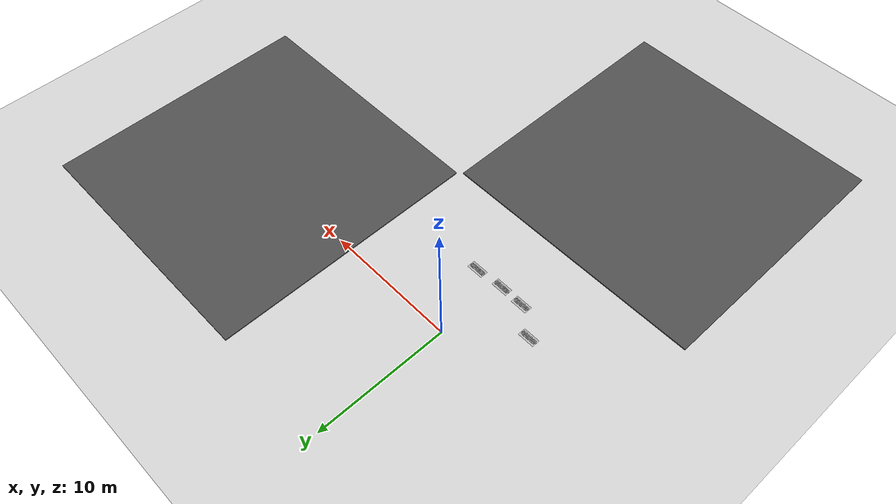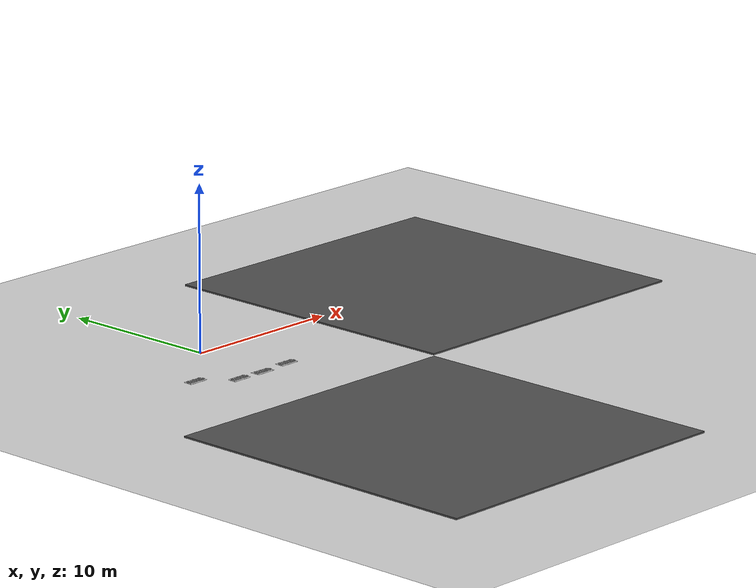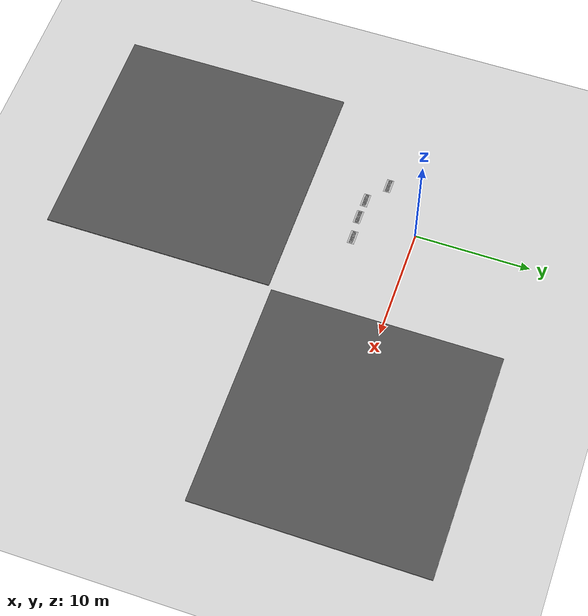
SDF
<sdf version="1.6">
 <world name="default">
  <model name="ground_plane">
   <static>1</static>
   <link name="link">
    <collision name="collision">
     <geometry><plane><normal>0 0 1</normal><size>100 100</size></plane></geometry>
     <surface><friction><ode><mu>100</mu><mu2>50</mu2></ode></friction></surface>
    </collision>
    <visual name="visual">
     <cast_shadows>0</cast_shadows>
     <geometry><plane><normal>0 0 1</normal><size>100 100</size></plane></geometry>
     <material>
      <script><uri>file://media/materials/scripts/gazebo.material</uri><name>Gazebo/Grey</name></script>
     </material>
    </visual>
   </link>
  </model>
  <model name="asphalt_plane">
   <static>1</static>
   <link name="link">
    <collision name="collision"><geometry><box><size>20 20 0.1</size></box></geometry></collision>
    <visual name="visual">
     <cast_shadows>0</cast_shadows>
     <geometry><box><size>20 20 0.1</size></box></geometry>
     <material>
      <script>
       <uri>model://asphalt_plane/materials/scripts</uri>
       <uri>model://asphalt_plane/materials/textures</uri>
       <name>vrc/asphalt</name>
      </script>
     </material>
    </visual>
   </link>
   <pose>18.9407 0.223118 0 0 -0 0</pose>
  </model>
  <model name="asphalt_plane_clone_1">
   <static>1</static>
   <link name="link">
    <collision name="collision"><geometry><box><size>20 20 0.1</size></box></geometry></collision>
    <visual name="visual">
     <cast_shadows>0</cast_shadows>
     <geometry><box><size>20 20 0.1</size></box></geometry>
     <material>
      <script>
       <uri>model://asphalt_plane/materials/scripts</uri>
       <uri>model://asphalt_plane/materials/textures</uri>
       <name>vrc/asphalt</name>
      </script>
     </material>
    </visual>
   </link>
   <pose>-1.39021 -20.104 0 0 -0 0</pose>
  </model>
  <model name="frc2016_roughterrain">
   <static>1</static>
   <link name="link">
    <visual name="platform">
     <pose>0 0 0.08269 0 -0 0</pose>
     <geometry><box><size>1.27 0.5969 0.003175</size></box></geometry>
    </visual>
    <collision name="platform">
     <pose>0 0 0.08269 0 -0 0</pose>
     <geometry><box><size>1.27 0.5969 0.003175</size></box></geometry>
    </collision>
    <visual name="row1_block1_sm">
     <pose>0.51435 0.1143 0.09698 0 -0 0</pose>
     <geometry><box><size>0.0762 0.0762 0.0254</size></box></geometry>
    </visual>
    <collision name="row1_block1_sm">
     <pose>0.51435 0.1143 0.09698 0 -0 0</pose>
     <geometry><box><size>0.0762 0.0762 0.0254</size></box></geometry>
    </collision>
    <visual name="row1_block2_lg">
     <pose>0.40005 0.1143 0.12238 0 -0 0</pose>
     <geometry><box><size>0.0762 0.0762 0.0762</size></box></geometry>
    </visual>
    <collision name="row1_block2_lg">
     <pose>0.40005 0.1143 0.12238 0 -0 0</pose>
     <geometry><box><size>0.0762 0.0762 0.0762</size></box></geometry>
    </collision>
    <visual name="row1_block3_md">
     <pose>0.28575 0.1143 0.10968 0 -0 0</pose>
     <geometry><box><size>0.0762 0.0762 0.0508</size></box></geometry>
    </visual>
    <collision name="row1_block3_md">
     <pose>0.28575 0.1143 0.10968 0 -0 0</pose>
     <geometry><box><size>0.0762 0.0762 0.0508</size></box></geometry>
    </collision>
    <visual name="row1_block4_sm">
     <pose>0.17145 0.1143 0.09698 0 -0 0</pose>
     <geometry><box><size>0.0762 0.0762 0.0254</size></box></geometry>
    </visual>
    <collision name="row1_block4_sm">
     <pose>0.17145 0.1143 0.09698 0 -0 0</pose>
     <geometry><box><size>0.0762 0.0762 0.0254</size></box></geometry>
    </collision>
    <visual name="row1_block5_md">
     <pose>0.05715 0.1143 0.10968 0 -0 0</pose>
     <geometry><box><size>0.0762 0.0762 0.0508</size></box></geometry>
    </visual>
    <collision name="row1_block5_md">
     <pose>0.05715 0.1143 0.10968 0 -0 0</pose>
     <geometry><box><size>0.0762 0.0762 0.0508</size></box></geometry>
    </collision>
    <visual name="row1_block6_lg">
     <pose>-0.05715 0.1143 0.12238 0 -0 0</pose>
     <geometry><box><size>0.0762 0.0762 0.0762</size></box></geometry>
    </visual>
    <collision name="row1_block6_lg">
     <pose>-0.05715 0.1143 0.12238 0 -0 0</pose>
     <geometry><box><size>0.0762 0.0762 0.0762</size></box></geometry>
    </collision>
    <visual name="row1_block7_sm">
     <pose>-0.17145 0.1143 0.09698 0 -0 0</pose>
     <geometry><box><size>0.0762 0.0762 0.0254</size></box></geometry>
    </visual>
    <collision name="row1_block7_sm">
     <pose>-0.17145 0.1143 0.09698 0 -0 0</pose>
     <geometry><box><size>0.0762 0.0762 0.0254</size></box></geometry>
    </collision>
    <visual name="row1_block8_sm">
     <pose>-0.28575 0.1143 0.09698 0 -0 0</pose>
     <geometry><box><size>0.0762 0.0762 0.0254</size></box></geometry>
    </visual>
    <collision name="row1_block8_sm">
     <pose>-0.28575 0.1143 0.09698 0 -0 0</pose>
     <geometry><box><size>0.0762 0.0762 0.0254</size></box></geometry>
    </collision>
    <visual name="row1_block9_md">
     <pose>-0.40005 0.1143 0.10968 0 -0 0</pose>
     <geometry><box><size>0.0762 0.0762 0.0508</size></box></geometry>
    </visual>
    <collision name="row1_block9_md">
     <pose>-0.40005 0.1143 0.10968 0 -0 0</pose>
     <geometry><box><size>0.0762 0.0762 0.0508</size></box></geometry>
    </collision>
    <visual name="row1_block10_lg">
     <pose>-0.51435 0.1143 0.12238 0 -0 0</pose>
     <geometry><box><size>0.0762 0.0762 0.0762</size></box></geometry>
    </visual>
    <collision name="row1_block10_lg">
     <pose>-0.51435 0.1143 0.12238 0 -0 0</pose>
     <geometry><box><size>0.0762 0.0762 0.0762</size></box></geometry>
    </collision>
    <visual name="row2_block1_md">
     <pose>0.5715 0 0.10968 0 -0 0</pose>
     <geometry><box><size>0.0762 0.0762 0.0508</size></box></geometry>
    </visual>
    <collision name="row2_block1_md">
     <pose>0.5715 0 0.10968 0 -0 0</pose>
     <geometry><box><size>0.0762 0.0762 0.0508</size></box></geometry>
    </collision>
    <visual name="row2_block2_sm">
     <pose>0.4572 0 0.09698 0 -0 0</pose>
     <geometry><box><size>0.0762 0.0762 0.0254</size></box></geometry>
    </visual>
    <collision name="row2_block2_sm">
     <pose>0.4572 0 0.09698 0 -0 0</pose>
     <geometry><box><size>0.0762 0.0762 0.0254</size></box></geometry>
    </collision>
    <visual name="row2_block3_lg">
     <pose>0.3429 0 0.12238 0 -0 0</pose>
     <geometry><box><size>0.0762 0.0762 0.0762</size></box></geometry>
    </visual>
    <collision name="row2_block3_lg">
     <pose>0.3429 0 0.12238 0 -0 0</pose>
     <geometry><box><size>0.0762 0.0762 0.0762</size></box></geometry>
    </collision>
    <visual name="row2_block4_md">
     <pose>0.2286 0 0.10968 0 -0 0</pose>
     <geometry><box><size>0.0762 0.0762 0.0508</size></box></geometry>
    </visual>
    <collision name="row2_block4_md">
     <pose>0.2286 0 0.10968 0 -0 0</pose>
     <geometry><box><size>0.0762 0.0762 0.0508</size></box></geometry>
    </collision>
    <visual name="row2_block5_lg">
     <pose>0.1143 0 0.12238 0 -0 0</pose>
     <geometry><box><size>0.0762 0.0762 0.0762</size></box></geometry>
    </visual>
    <collision name="row2_block5_lg">
     <pose>0.1143 0 0.12238 0 -0 0</pose>
     <geometry><box><size>0.0762 0.0762 0.0762</size></box></geometry>
    </collision>
    <visual name="row2_block6_sm">
     <pose>0 0 0.09698 0 -0 0</pose>
     <geometry><box><size>0.0762 0.0762 0.0254</size></box></geometry>
    </visual>
    <collision name="row2_block6_sm">
     <pose>0 0 0.09698 0 -0 0</pose>
     <geometry><box><size>0.0762 0.0762 0.0254</size></box></geometry>
    </collision>
    <visual name="row2_block7_md">
     <pose>-0.1143 0 0.10968 0 -0 0</pose>
     <geometry><box><size>0.0762 0.0762 0.0508</size></box></geometry>
    </visual>
    <collision name="row2_block7_md">
     <pose>-0.1143 0 0.10968 0 -0 0</pose>
     <geometry><box><size>0.0762 0.0762 0.0508</size></box></geometry>
    </collision>
    <visual name="row2_block8_lg">
     <pose>-0.2286 0 0.12238 0 -0 0</pose>
     <geometry><box><size>0.0762 0.0762 0.0762</size></box></geometry>
    </visual>
    <collision name="row2_block8_lg">
     <pose>-0.2286 0 0.12238 0 -0 0</pose>
     <geometry><box><size>0.0762 0.0762 0.0762</size></box></geometry>
    </collision>
    <visual name="row2_block9_sm">
     <pose>-0.3429 0 0.09698 0 -0 0</pose>
     <geometry><box><size>0.0762 0.0762 0.0254</size></box></geometry>
    </visual>
    <collision name="row2_block9_sm">
     <pose>-0.3429 0 0.09698 0 -0 0</pose>
     <geometry><box><size>0.0762 0.0762 0.0254</size></box></geometry>
    </collision>
    <visual name="row2_block10_lg">
     <pose>-0.4572 0 0.12238 0 -0 0</pose>
     <geometry><box><size>0.0762 0.0762 0.0762</size></box></geometry>
    </visual>
    <collision name="row2_block10_lg">
     <pose>-0.4572 0 0.12238 0 -0 0</pose>
     <geometry><box><size>0.0762 0.0762 0.0762</size></box></geometry>
    </collision>
    <visual name="row2_block11_md">
     <pose>-0.5715 0 0.10968 0 -0 0</pose>
     <geometry><box><size>0.0762 0.0762 0.0508</size></box></geometry>
    </visual>
    <collision name="row2_block11_md">
     <pose>-0.5715 0 0.10968 0 -0 0</pose>
     <geometry><box><size>0.0762 0.0762 0.0508</size></box></geometry>
    </collision>
    <visual name="row3_block1_lg">
     <pose>0.51435 -0.1143 0.12238 0 -0 0</pose>
     <geometry><box><size>0.0762 0.0762 0.0762</size></box></geometry>
    </visual>
    <collision name="row3_block1_lg">
     <pose>0.51435 -0.1143 0.12238 0 -0 0</pose>
     <geometry><box><size>0.0762 0.0762 0.0762</size></box></geometry>
    </collision>
    <visual name="row3_block2_md">
     <pose>0.40005 -0.1143 0.10968 0 -0 0</pose>
     <geometry><box><size>0.0762 0.0762 0.0508</size></box></geometry>
    </visual>
    <collision name="row3_block2_md">
     <pose>0.40005 -0.1143 0.10968 0 -0 0</pose>
     <geometry><box><size>0.0762 0.0762 0.0508</size></box></geometry>
    </collision>
    <visual name="row3_block3_lg">
     <pose>0.28575 -0.1143 0.12238 0 -0 0</pose>
     <geometry><box><size>0.0762 0.0762 0.0762</size></box></geometry>
    </visual>
    <collision name="row3_block3_lg">
     <pose>0.28575 -0.1143 0.12238 0 -0 0</pose>
     <geometry><box><size>0.0762 0.0762 0.0762</size></box></geometry>
    </collision>
    <visual name="row3_block4_sm">
     <pose>0.17145 -0.1143 0.09698 0 -0 0</pose>
     <geometry><box><size>0.0762 0.0762 0.0254</size></box></geometry>
    </visual>
    <collision name="row3_block4_sm">
     <pose>0.17145 -0.1143 0.09698 0 -0 0</pose>
     <geometry><box><size>0.0762 0.0762 0.0254</size></box></geometry>
    </collision>
    <visual name="row3_block5_md">
     <pose>0.05715 -0.1143 0.10968 0 -0 0</pose>
     <geometry><box><size>0.0762 0.0762 0.0508</size></box></geometry>
    </visual>
    <collision name="row3_block5_md">
     <pose>0.05715 -0.1143 0.10968 0 -0 0</pose>
     <geometry><box><size>0.0762 0.0762 0.0508</size></box></geometry>
    </collision>
    <visual name="row3_block6_md">
     <pose>-0.05715 -0.1143 0.10968 0 -0 0</pose>
     <geometry><box><size>0.0762 0.0762 0.0508</size></box></geometry>
    </visual>
    <collision name="row3_block6_md">
     <pose>-0.05715 -0.1143 0.10968 0 -0 0</pose>
     <geometry><box><size>0.0762 0.0762 0.0508</size></box></geometry>
    </collision>
    <visual name="row3_block7_lg">
     <pose>-0.17145 -0.1143 0.12238 0 -0 0</pose>
     <geometry><box><size>0.0762 0.0762 0.0762</size></box></geometry>
    </visual>
    <collision name="row3_block7_lg">
     <pose>-0.17145 -0.1143 0.12238 0 -0 0</pose>
     <geometry><box><size>0.0762 0.0762 0.0762</size></box></geometry>
    </collision>
    <visual name="row3_block8_sm">
     <pose>-0.28575 -0.1143 0.09698 0 -0 0</pose>
     <geometry><box><size>0.0762 0.0762 0.0254</size></box></geometry>
    </visual>
    <collision name="row3_block8_sm">
     <pose>-0.28575 -0.1143 0.09698 0 -0 0</pose>
     <geometry><box><size>0.0762 0.0762 0.0254</size></box></geometry>
    </collision>
    <visual name="row3_block9_md">
     <pose>-0.40005 -0.1143 0.10968 0 -0 0</pose>
     <geometry><box><size>0.0762 0.0762 0.0508</size></box></geometry>
    </visual>
    <collision name="row3_block9_md">
     <pose>-0.40005 -0.1143 0.10968 0 -0 0</pose>
     <geometry><box><size>0.0762 0.0762 0.0508</size></box></geometry>
    </collision>
    <visual name="row3_block10_sm">
     <pose>-0.51435 -0.1143 0.09698 0 -0 0</pose>
     <geometry><box><size>0.0762 0.0762 0.0254</size></box></geometry>
    </visual>
    <collision name="row3_block10_sm">
     <pose>-0.51435 -0.1143 0.09698 0 -0 0</pose>
     <geometry><box><size>0.0762 0.0762 0.0254</size></box></geometry>
    </collision>
   </link>
   <pose>-2.03296 -5.08566 0 0 -0 0</pose>
  </model>
  <model name="frc2016_roughterrain_clone">
   <static>1</static>
   <link name="link">
    <visual name="platform">
     <pose>0 0 0.08269 0 -0 0</pose>
     <geometry><box><size>1.27 0.5969 0.003175</size></box></geometry>
    </visual>
    <collision name="platform">
     <pose>0 0 0.08269 0 -0 0</pose>
     <geometry><box><size>1.27 0.5969 0.003175</size></box></geometry>
    </collision>
    <visual name="row1_block1_sm">
     <pose>0.51435 0.1143 0.09698 0 -0 0</pose>
     <geometry><box><size>0.0762 0.0762 0.0254</size></box></geometry>
    </visual>
    <collision name="row1_block1_sm">
     <pose>0.51435 0.1143 0.09698 0 -0 0</pose>
     <geometry><box><size>0.0762 0.0762 0.0254</size></box></geometry>
    </collision>
    <visual name="row1_block2_lg">
     <pose>0.40005 0.1143 0.12238 0 -0 0</pose>
     <geometry><box><size>0.0762 0.0762 0.0762</size></box></geometry>
    </visual>
    <collision name="row1_block2_lg">
     <pose>0.40005 0.1143 0.12238 0 -0 0</pose>
     <geometry><box><size>0.0762 0.0762 0.0762</size></box></geometry>
    </collision>
    <visual name="row1_block3_md">
     <pose>0.28575 0.1143 0.10968 0 -0 0</pose>
     <geometry><box><size>0.0762 0.0762 0.0508</size></box></geometry>
    </visual>
    <collision name="row1_block3_md">
     <pose>0.28575 0.1143 0.10968 0 -0 0</pose>
     <geometry><box><size>0.0762 0.0762 0.0508</size></box></geometry>
    </collision>
    <visual name="row1_block4_sm">
     <pose>0.17145 0.1143 0.09698 0 -0 0</pose>
     <geometry><box><size>0.0762 0.0762 0.0254</size></box></geometry>
    </visual>
    <collision name="row1_block4_sm">
     <pose>0.17145 0.1143 0.09698 0 -0 0</pose>
     <geometry><box><size>0.0762 0.0762 0.0254</size></box></geometry>
    </collision>
    <visual name="row1_block5_md">
     <pose>0.05715 0.1143 0.10968 0 -0 0</pose>
     <geometry><box><size>0.0762 0.0762 0.0508</size></box></geometry>
    </visual>
    <collision name="row1_block5_md">
     <pose>0.05715 0.1143 0.10968 0 -0 0</pose>
     <geometry><box><size>0.0762 0.0762 0.0508</size></box></geometry>
    </collision>
    <visual name="row1_block6_lg">
     <pose>-0.05715 0.1143 0.12238 0 -0 0</pose>
     <geometry><box><size>0.0762 0.0762 0.0762</size></box></geometry>
    </visual>
    <collision name="row1_block6_lg">
     <pose>-0.05715 0.1143 0.12238 0 -0 0</pose>
     <geometry><box><size>0.0762 0.0762 0.0762</size></box></geometry>
    </collision>
    <visual name="row1_block7_sm">
     <pose>-0.17145 0.1143 0.09698 0 -0 0</pose>
     <geometry><box><size>0.0762 0.0762 0.0254</size></box></geometry>
    </visual>
    <collision name="row1_block7_sm">
     <pose>-0.17145 0.1143 0.09698 0 -0 0</pose>
     <geometry><box><size>0.0762 0.0762 0.0254</size></box></geometry>
    </collision>
    <visual name="row1_block8_sm">
     <pose>-0.28575 0.1143 0.09698 0 -0 0</pose>
     <geometry><box><size>0.0762 0.0762 0.0254</size></box></geometry>
    </visual>
    <collision name="row1_block8_sm">
     <pose>-0.28575 0.1143 0.09698 0 -0 0</pose>
     <geometry><box><size>0.0762 0.0762 0.0254</size></box></geometry>
    </collision>
    <visual name="row1_block9_md">
     <pose>-0.40005 0.1143 0.10968 0 -0 0</pose>
     <geometry><box><size>0.0762 0.0762 0.0508</size></box></geometry>
    </visual>
    <collision name="row1_block9_md">
     <pose>-0.40005 0.1143 0.10968 0 -0 0</pose>
     <geometry><box><size>0.0762 0.0762 0.0508</size></box></geometry>
    </collision>
    <visual name="row1_block10_lg">
     <pose>-0.51435 0.1143 0.12238 0 -0 0</pose>
     <geometry><box><size>0.0762 0.0762 0.0762</size></box></geometry>
    </visual>
    <collision name="row1_block10_lg">
     <pose>-0.51435 0.1143 0.12238 0 -0 0</pose>
     <geometry><box><size>0.0762 0.0762 0.0762</size></box></geometry>
    </collision>
    <visual name="row2_block1_md">
     <pose>0.5715 0 0.10968 0 -0 0</pose>
     <geometry><box><size>0.0762 0.0762 0.0508</size></box></geometry>
    </visual>
    <collision name="row2_block1_md">
     <pose>0.5715 0 0.10968 0 -0 0</pose>
     <geometry><box><size>0.0762 0.0762 0.0508</size></box></geometry>
    </collision>
    <visual name="row2_block2_sm">
     <pose>0.4572 0 0.09698 0 -0 0</pose>
     <geometry><box><size>0.0762 0.0762 0.0254</size></box></geometry>
    </visual>
    <collision name="row2_block2_sm">
     <pose>0.4572 0 0.09698 0 -0 0</pose>
     <geometry><box><size>0.0762 0.0762 0.0254</size></box></geometry>
    </collision>
    <visual name="row2_block3_lg">
     <pose>0.3429 0 0.12238 0 -0 0</pose>
     <geometry><box><size>0.0762 0.0762 0.0762</size></box></geometry>
    </visual>
    <collision name="row2_block3_lg">
     <pose>0.3429 0 0.12238 0 -0 0</pose>
     <geometry><box><size>0.0762 0.0762 0.0762</size></box></geometry>
    </collision>
    <visual name="row2_block4_md">
     <pose>0.2286 0 0.10968 0 -0 0</pose>
     <geometry><box><size>0.0762 0.0762 0.0508</size></box></geometry>
    </visual>
    <collision name="row2_block4_md">
     <pose>0.2286 0 0.10968 0 -0 0</pose>
     <geometry><box><size>0.0762 0.0762 0.0508</size></box></geometry>
    </collision>
    <visual name="row2_block5_lg">
     <pose>0.1143 0 0.12238 0 -0 0</pose>
     <geometry><box><size>0.0762 0.0762 0.0762</size></box></geometry>
    </visual>
    <collision name="row2_block5_lg">
     <pose>0.1143 0 0.12238 0 -0 0</pose>
     <geometry><box><size>0.0762 0.0762 0.0762</size></box></geometry>
    </collision>
    <visual name="row2_block6_sm">
     <pose>0 0 0.09698 0 -0 0</pose>
     <geometry><box><size>0.0762 0.0762 0.0254</size></box></geometry>
    </visual>
    <collision name="row2_block6_sm">
     <pose>0 0 0.09698 0 -0 0</pose>
     <geometry><box><size>0.0762 0.0762 0.0254</size></box></geometry>
    </collision>
    <visual name="row2_block7_md">
     <pose>-0.1143 0 0.10968 0 -0 0</pose>
     <geometry><box><size>0.0762 0.0762 0.0508</size></box></geometry>
    </visual>
    <collision name="row2_block7_md">
     <pose>-0.1143 0 0.10968 0 -0 0</pose>
     <geometry><box><size>0.0762 0.0762 0.0508</size></box></geometry>
    </collision>
    <visual name="row2_block8_lg">
     <pose>-0.2286 0 0.12238 0 -0 0</pose>
     <geometry><box><size>0.0762 0.0762 0.0762</size></box></geometry>
    </visual>
    <collision name="row2_block8_lg">
     <pose>-0.2286 0 0.12238 0 -0 0</pose>
     <geometry><box><size>0.0762 0.0762 0.0762</size></box></geometry>
    </collision>
    <visual name="row2_block9_sm">
     <pose>-0.3429 0 0.09698 0 -0 0</pose>
     <geometry><box><size>0.0762 0.0762 0.0254</size></box></geometry>
    </visual>
    <collision name="row2_block9_sm">
     <pose>-0.3429 0 0.09698 0 -0 0</pose>
     <geometry><box><size>0.0762 0.0762 0.0254</size></box></geometry>
    </collision>
    <visual name="row2_block10_lg">
     <pose>-0.4572 0 0.12238 0 -0 0</pose>
     <geometry><box><size>0.0762 0.0762 0.0762</size></box></geometry>
    </visual>
    <collision name="row2_block10_lg">
     <pose>-0.4572 0 0.12238 0 -0 0</pose>
     <geometry><box><size>0.0762 0.0762 0.0762</size></box></geometry>
    </collision>
    <visual name="row2_block11_md">
     <pose>-0.5715 0 0.10968 0 -0 0</pose>
     <geometry><box><size>0.0762 0.0762 0.0508</size></box></geometry>
    </visual>
    <collision name="row2_block11_md">
     <pose>-0.5715 0 0.10968 0 -0 0</pose>
     <geometry><box><size>0.0762 0.0762 0.0508</size></box></geometry>
    </collision>
    <visual name="row3_block1_lg">
     <pose>0.51435 -0.1143 0.12238 0 -0 0</pose>
     <geometry><box><size>0.0762 0.0762 0.0762</size></box></geometry>
    </visual>
    <collision name="row3_block1_lg">
     <pose>0.51435 -0.1143 0.12238 0 -0 0</pose>
     <geometry><box><size>0.0762 0.0762 0.0762</size></box></geometry>
    </collision>
    <visual name="row3_block2_md">
     <pose>0.40005 -0.1143 0.10968 0 -0 0</pose>
     <geometry><box><size>0.0762 0.0762 0.0508</size></box></geometry>
    </visual>
    <collision name="row3_block2_md">
     <pose>0.40005 -0.1143 0.10968 0 -0 0</pose>
     <geometry><box><size>0.0762 0.0762 0.0508</size></box></geometry>
    </collision>
    <visual name="row3_block3_lg">
     <pose>0.28575 -0.1143 0.12238 0 -0 0</pose>
     <geometry><box><size>0.0762 0.0762 0.0762</size></box></geometry>
    </visual>
    <collision name="row3_block3_lg">
     <pose>0.28575 -0.1143 0.12238 0 -0 0</pose>
     <geometry><box><size>0.0762 0.0762 0.0762</size></box></geometry>
    </collision>
    <visual name="row3_block4_sm">
     <pose>0.17145 -0.1143 0.09698 0 -0 0</pose>
     <geometry><box><size>0.0762 0.0762 0.0254</size></box></geometry>
    </visual>
    <collision name="row3_block4_sm">
     <pose>0.17145 -0.1143 0.09698 0 -0 0</pose>
     <geometry><box><size>0.0762 0.0762 0.0254</size></box></geometry>
    </collision>
    <visual name="row3_block5_md">
     <pose>0.05715 -0.1143 0.10968 0 -0 0</pose>
     <geometry><box><size>0.0762 0.0762 0.0508</size></box></geometry>
    </visual>
    <collision name="row3_block5_md">
     <pose>0.05715 -0.1143 0.10968 0 -0 0</pose>
     <geometry><box><size>0.0762 0.0762 0.0508</size></box></geometry>
    </collision>
    <visual name="row3_block6_md">
     <pose>-0.05715 -0.1143 0.10968 0 -0 0</pose>
     <geometry><box><size>0.0762 0.0762 0.0508</size></box></geometry>
    </visual>
    <collision name="row3_block6_md">
     <pose>-0.05715 -0.1143 0.10968 0 -0 0</pose>
     <geometry><box><size>0.0762 0.0762 0.0508</size></box></geometry>
    </collision>
    <visual name="row3_block7_lg">
     <pose>-0.17145 -0.1143 0.12238 0 -0 0</pose>
     <geometry><box><size>0.0762 0.0762 0.0762</size></box></geometry>
    </visual>
    <collision name="row3_block7_lg">
     <pose>-0.17145 -0.1143 0.12238 0 -0 0</pose>
     <geometry><box><size>0.0762 0.0762 0.0762</size></box></geometry>
    </collision>
    <visual name="row3_block8_sm">
     <pose>-0.28575 -0.1143 0.09698 0 -0 0</pose>
     <geometry><box><size>0.0762 0.0762 0.0254</size></box></geometry>
    </visual>
    <collision name="row3_block8_sm">
     <pose>-0.28575 -0.1143 0.09698 0 -0 0</pose>
     <geometry><box><size>0.0762 0.0762 0.0254</size></box></geometry>
    </collision>
    <visual name="row3_block9_md">
     <pose>-0.40005 -0.1143 0.10968 0 -0 0</pose>
     <geometry><box><size>0.0762 0.0762 0.0508</size></box></geometry>
    </visual>
    <collision name="row3_block9_md">
     <pose>-0.40005 -0.1143 0.10968 0 -0 0</pose>
     <geometry><box><size>0.0762 0.0762 0.0508</size></box></geometry>
    </collision>
    <visual name="row3_block10_sm">
     <pose>-0.51435 -0.1143 0.09698 0 -0 0</pose>
     <geometry><box><size>0.0762 0.0762 0.0254</size></box></geometry>
    </visual>
    <collision name="row3_block10_sm">
     <pose>-0.51435 -0.1143 0.09698 0 -0 0</pose>
     <geometry><box><size>0.0762 0.0762 0.0254</size></box></geometry>
    </collision>
   </link>
   <pose>-0.216195 -5.1386 0 0 -0 0</pose>
  </model>
  <model name="frc2016_roughterrain_clone_0">
   <static>1</static>
   <link name="link">
    <visual name="platform">
     <pose>0 0 0.08269 0 -0 0</pose>
     <geometry><box><size>1.27 0.5969 0.003175</size></box></geometry>
    </visual>
    <collision name="platform">
     <pose>0 0 0.08269 0 -0 0</pose>
     <geometry><box><size>1.27 0.5969 0.003175</size></box></geometry>
    </collision>
    <visual name="row1_block1_sm">
     <pose>0.51435 0.1143 0.09698 0 -0 0</pose>
     <geometry><box><size>0.0762 0.0762 0.0254</size></box></geometry>
    </visual>
    <collision name="row1_block1_sm">
     <pose>0.51435 0.1143 0.09698 0 -0 0</pose>
     <geometry><box><size>0.0762 0.0762 0.0254</size></box></geometry>
    </collision>
    <visual name="row1_block2_lg">
     <pose>0.40005 0.1143 0.12238 0 -0 0</pose>
     <geometry><box><size>0.0762 0.0762 0.0762</size></box></geometry>
    </visual>
    <collision name="row1_block2_lg">
     <pose>0.40005 0.1143 0.12238 0 -0 0</pose>
     <geometry><box><size>0.0762 0.0762 0.0762</size></box></geometry>
    </collision>
    <visual name="row1_block3_md">
     <pose>0.28575 0.1143 0.10968 0 -0 0</pose>
     <geometry><box><size>0.0762 0.0762 0.0508</size></box></geometry>
    </visual>
    <collision name="row1_block3_md">
     <pose>0.28575 0.1143 0.10968 0 -0 0</pose>
     <geometry><box><size>0.0762 0.0762 0.0508</size></box></geometry>
    </collision>
    <visual name="row1_block4_sm">
     <pose>0.17145 0.1143 0.09698 0 -0 0</pose>
     <geometry><box><size>0.0762 0.0762 0.0254</size></box></geometry>
    </visual>
    <collision name="row1_block4_sm">
     <pose>0.17145 0.1143 0.09698 0 -0 0</pose>
     <geometry><box><size>0.0762 0.0762 0.0254</size></box></geometry>
    </collision>
    <visual name="row1_block5_md">
     <pose>0.05715 0.1143 0.10968 0 -0 0</pose>
     <geometry><box><size>0.0762 0.0762 0.0508</size></box></geometry>
    </visual>
    <collision name="row1_block5_md">
     <pose>0.05715 0.1143 0.10968 0 -0 0</pose>
     <geometry><box><size>0.0762 0.0762 0.0508</size></box></geometry>
    </collision>
    <visual name="row1_block6_lg">
     <pose>-0.05715 0.1143 0.12238 0 -0 0</pose>
     <geometry><box><size>0.0762 0.0762 0.0762</size></box></geometry>
    </visual>
    <collision name="row1_block6_lg">
     <pose>-0.05715 0.1143 0.12238 0 -0 0</pose>
     <geometry><box><size>0.0762 0.0762 0.0762</size></box></geometry>
    </collision>
    <visual name="row1_block7_sm">
     <pose>-0.17145 0.1143 0.09698 0 -0 0</pose>
     <geometry><box><size>0.0762 0.0762 0.0254</size></box></geometry>
    </visual>
    <collision name="row1_block7_sm">
     <pose>-0.17145 0.1143 0.09698 0 -0 0</pose>
     <geometry><box><size>0.0762 0.0762 0.0254</size></box></geometry>
    </collision>
    <visual name="row1_block8_sm">
     <pose>-0.28575 0.1143 0.09698 0 -0 0</pose>
     <geometry><box><size>0.0762 0.0762 0.0254</size></box></geometry>
    </visual>
    <collision name="row1_block8_sm">
     <pose>-0.28575 0.1143 0.09698 0 -0 0</pose>
     <geometry><box><size>0.0762 0.0762 0.0254</size></box></geometry>
    </collision>
    <visual name="row1_block9_md">
     <pose>-0.40005 0.1143 0.10968 0 -0 0</pose>
     <geometry><box><size>0.0762 0.0762 0.0508</size></box></geometry>
    </visual>
    <collision name="row1_block9_md">
     <pose>-0.40005 0.1143 0.10968 0 -0 0</pose>
     <geometry><box><size>0.0762 0.0762 0.0508</size></box></geometry>
    </collision>
    <visual name="row1_block10_lg">
     <pose>-0.51435 0.1143 0.12238 0 -0 0</pose>
     <geometry><box><size>0.0762 0.0762 0.0762</size></box></geometry>
    </visual>
    <collision name="row1_block10_lg">
     <pose>-0.51435 0.1143 0.12238 0 -0 0</pose>
     <geometry><box><size>0.0762 0.0762 0.0762</size></box></geometry>
    </collision>
    <visual name="row2_block1_md">
     <pose>0.5715 0 0.10968 0 -0 0</pose>
     <geometry><box><size>0.0762 0.0762 0.0508</size></box></geometry>
    </visual>
    <collision name="row2_block1_md">
     <pose>0.5715 0 0.10968 0 -0 0</pose>
     <geometry><box><size>0.0762 0.0762 0.0508</size></box></geometry>
    </collision>
    <visual name="row2_block2_sm">
     <pose>0.4572 0 0.09698 0 -0 0</pose>
     <geometry><box><size>0.0762 0.0762 0.0254</size></box></geometry>
    </visual>
    <collision name="row2_block2_sm">
     <pose>0.4572 0 0.09698 0 -0 0</pose>
     <geometry><box><size>0.0762 0.0762 0.0254</size></box></geometry>
    </collision>
    <visual name="row2_block3_lg">
     <pose>0.3429 0 0.12238 0 -0 0</pose>
     <geometry><box><size>0.0762 0.0762 0.0762</size></box></geometry>
    </visual>
    <collision name="row2_block3_lg">
     <pose>0.3429 0 0.12238 0 -0 0</pose>
     <geometry><box><size>0.0762 0.0762 0.0762</size></box></geometry>
    </collision>
    <visual name="row2_block4_md">
     <pose>0.2286 0 0.10968 0 -0 0</pose>
     <geometry><box><size>0.0762 0.0762 0.0508</size></box></geometry>
    </visual>
    <collision name="row2_block4_md">
     <pose>0.2286 0 0.10968 0 -0 0</pose>
     <geometry><box><size>0.0762 0.0762 0.0508</size></box></geometry>
    </collision>
    <visual name="row2_block5_lg">
     <pose>0.1143 0 0.12238 0 -0 0</pose>
     <geometry><box><size>0.0762 0.0762 0.0762</size></box></geometry>
    </visual>
    <collision name="row2_block5_lg">
     <pose>0.1143 0 0.12238 0 -0 0</pose>
     <geometry><box><size>0.0762 0.0762 0.0762</size></box></geometry>
    </collision>
    <visual name="row2_block6_sm">
     <pose>0 0 0.09698 0 -0 0</pose>
     <geometry><box><size>0.0762 0.0762 0.0254</size></box></geometry>
    </visual>
    <collision name="row2_block6_sm">
     <pose>0 0 0.09698 0 -0 0</pose>
     <geometry><box><size>0.0762 0.0762 0.0254</size></box></geometry>
    </collision>
    <visual name="row2_block7_md">
     <pose>-0.1143 0 0.10968 0 -0 0</pose>
     <geometry><box><size>0.0762 0.0762 0.0508</size></box></geometry>
    </visual>
    <collision name="row2_block7_md">
     <pose>-0.1143 0 0.10968 0 -0 0</pose>
     <geometry><box><size>0.0762 0.0762 0.0508</size></box></geometry>
    </collision>
    <visual name="row2_block8_lg">
     <pose>-0.2286 0 0.12238 0 -0 0</pose>
     <geometry><box><size>0.0762 0.0762 0.0762</size></box></geometry>
    </visual>
    <collision name="row2_block8_lg">
     <pose>-0.2286 0 0.12238 0 -0 0</pose>
     <geometry><box><size>0.0762 0.0762 0.0762</size></box></geometry>
    </collision>
    <visual name="row2_block9_sm">
     <pose>-0.3429 0 0.09698 0 -0 0</pose>
     <geometry><box><size>0.0762 0.0762 0.0254</size></box></geometry>
    </visual>
    <collision name="row2_block9_sm">
     <pose>-0.3429 0 0.09698 0 -0 0</pose>
     <geometry><box><size>0.0762 0.0762 0.0254</size></box></geometry>
    </collision>
    <visual name="row2_block10_lg">
     <pose>-0.4572 0 0.12238 0 -0 0</pose>
     <geometry><box><size>0.0762 0.0762 0.0762</size></box></geometry>
    </visual>
    <collision name="row2_block10_lg">
     <pose>-0.4572 0 0.12238 0 -0 0</pose>
     <geometry><box><size>0.0762 0.0762 0.0762</size></box></geometry>
    </collision>
    <visual name="row2_block11_md">
     <pose>-0.5715 0 0.10968 0 -0 0</pose>
     <geometry><box><size>0.0762 0.0762 0.0508</size></box></geometry>
    </visual>
    <collision name="row2_block11_md">
     <pose>-0.5715 0 0.10968 0 -0 0</pose>
     <geometry><box><size>0.0762 0.0762 0.0508</size></box></geometry>
    </collision>
    <visual name="row3_block1_lg">
     <pose>0.51435 -0.1143 0.12238 0 -0 0</pose>
     <geometry><box><size>0.0762 0.0762 0.0762</size></box></geometry>
    </visual>
    <collision name="row3_block1_lg">
     <pose>0.51435 -0.1143 0.12238 0 -0 0</pose>
     <geometry><box><size>0.0762 0.0762 0.0762</size></box></geometry>
    </collision>
    <visual name="row3_block2_md">
     <pose>0.40005 -0.1143 0.10968 0 -0 0</pose>
     <geometry><box><size>0.0762 0.0762 0.0508</size></box></geometry>
    </visual>
    <collision name="row3_block2_md">
     <pose>0.40005 -0.1143 0.10968 0 -0 0</pose>
     <geometry><box><size>0.0762 0.0762 0.0508</size></box></geometry>
    </collision>
    <visual name="row3_block3_lg">
     <pose>0.28575 -0.1143 0.12238 0 -0 0</pose>
     <geometry><box><size>0.0762 0.0762 0.0762</size></box></geometry>
    </visual>
    <collision name="row3_block3_lg">
     <pose>0.28575 -0.1143 0.12238 0 -0 0</pose>
     <geometry><box><size>0.0762 0.0762 0.0762</size></box></geometry>
    </collision>
    <visual name="row3_block4_sm">
     <pose>0.17145 -0.1143 0.09698 0 -0 0</pose>
     <geometry><box><size>0.0762 0.0762 0.0254</size></box></geometry>
    </visual>
    <collision name="row3_block4_sm">
     <pose>0.17145 -0.1143 0.09698 0 -0 0</pose>
     <geometry><box><size>0.0762 0.0762 0.0254</size></box></geometry>
    </collision>
    <visual name="row3_block5_md">
     <pose>0.05715 -0.1143 0.10968 0 -0 0</pose>
     <geometry><box><size>0.0762 0.0762 0.0508</size></box></geometry>
    </visual>
    <collision name="row3_block5_md">
     <pose>0.05715 -0.1143 0.10968 0 -0 0</pose>
     <geometry><box><size>0.0762 0.0762 0.0508</size></box></geometry>
    </collision>
    <visual name="row3_block6_md">
     <pose>-0.05715 -0.1143 0.10968 0 -0 0</pose>
     <geometry><box><size>0.0762 0.0762 0.0508</size></box></geometry>
    </visual>
    <collision name="row3_block6_md">
     <pose>-0.05715 -0.1143 0.10968 0 -0 0</pose>
     <geometry><box><size>0.0762 0.0762 0.0508</size></box></geometry>
    </collision>
    <visual name="row3_block7_lg">
     <pose>-0.17145 -0.1143 0.12238 0 -0 0</pose>
     <geometry><box><size>0.0762 0.0762 0.0762</size></box></geometry>
    </visual>
    <collision name="row3_block7_lg">
     <pose>-0.17145 -0.1143 0.12238 0 -0 0</pose>
     <geometry><box><size>0.0762 0.0762 0.0762</size></box></geometry>
    </collision>
    <visual name="row3_block8_sm">
     <pose>-0.28575 -0.1143 0.09698 0 -0 0</pose>
     <geometry><box><size>0.0762 0.0762 0.0254</size></box></geometry>
    </visual>
    <collision name="row3_block8_sm">
     <pose>-0.28575 -0.1143 0.09698 0 -0 0</pose>
     <geometry><box><size>0.0762 0.0762 0.0254</size></box></geometry>
    </collision>
    <visual name="row3_block9_md">
     <pose>-0.40005 -0.1143 0.10968 0 -0 0</pose>
     <geometry><box><size>0.0762 0.0762 0.0508</size></box></geometry>
    </visual>
    <collision name="row3_block9_md">
     <pose>-0.40005 -0.1143 0.10968 0 -0 0</pose>
     <geometry><box><size>0.0762 0.0762 0.0508</size></box></geometry>
    </collision>
    <visual name="row3_block10_sm">
     <pose>-0.51435 -0.1143 0.09698 0 -0 0</pose>
     <geometry><box><size>0.0762 0.0762 0.0254</size></box></geometry>
    </visual>
    <collision name="row3_block10_sm">
     <pose>-0.51435 -0.1143 0.09698 0 -0 0</pose>
     <geometry><box><size>0.0762 0.0762 0.0254</size></box></geometry>
    </collision>
   </link>
   <pose>1.88709 -4.97641 0 0 -0 0</pose>
  </model>
  <model name="frc2016_roughterrain_clone_5">
   <static>1</static>
   <link name="link">
    <visual name="platform">
     <pose>0 0 0.08269 0 -0 0</pose>
     <geometry><box><size>1.27 0.5969 0.003175</size></box></geometry>
    </visual>
    <collision name="platform">
     <pose>0 0 0.08269 0 -0 0</pose>
     <geometry><box><size>1.27 0.5969 0.003175</size></box></geometry>
    </collision>
    <visual name="row1_block1_sm">
     <pose>0.51435 0.1143 0.09698 0 -0 0</pose>
     <geometry><box><size>0.0762 0.0762 0.0254</size></box></geometry>
    </visual>
    <collision name="row1_block1_sm">
     <pose>0.51435 0.1143 0.09698 0 -0 0</pose>
     <geometry><box><size>0.0762 0.0762 0.0254</size></box></geometry>
    </collision>
    <visual name="row1_block2_lg">
     <pose>0.40005 0.1143 0.12238 0 -0 0</pose>
     <geometry><box><size>0.0762 0.0762 0.0762</size></box></geometry>
    </visual>
    <collision name="row1_block2_lg">
     <pose>0.40005 0.1143 0.12238 0 -0 0</pose>
     <geometry><box><size>0.0762 0.0762 0.0762</size></box></geometry>
    </collision>
    <visual name="row1_block3_md">
     <pose>0.28575 0.1143 0.10968 0 -0 0</pose>
     <geometry><box><size>0.0762 0.0762 0.0508</size></box></geometry>
    </visual>
    <collision name="row1_block3_md">
     <pose>0.28575 0.1143 0.10968 0 -0 0</pose>
     <geometry><box><size>0.0762 0.0762 0.0508</size></box></geometry>
    </collision>
    <visual name="row1_block4_sm">
     <pose>0.17145 0.1143 0.09698 0 -0 0</pose>
     <geometry><box><size>0.0762 0.0762 0.0254</size></box></geometry>
    </visual>
    <collision name="row1_block4_sm">
     <pose>0.17145 0.1143 0.09698 0 -0 0</pose>
     <geometry><box><size>0.0762 0.0762 0.0254</size></box></geometry>
    </collision>
    <visual name="row1_block5_md">
     <pose>0.05715 0.1143 0.10968 0 -0 0</pose>
     <geometry><box><size>0.0762 0.0762 0.0508</size></box></geometry>
    </visual>
    <collision name="row1_block5_md">
     <pose>0.05715 0.1143 0.10968 0 -0 0</pose>
     <geometry><box><size>0.0762 0.0762 0.0508</size></box></geometry>
    </collision>
    <visual name="row1_block6_lg">
     <pose>-0.05715 0.1143 0.12238 0 -0 0</pose>
     <geometry><box><size>0.0762 0.0762 0.0762</size></box></geometry>
    </visual>
    <collision name="row1_block6_lg">
     <pose>-0.05715 0.1143 0.12238 0 -0 0</pose>
     <geometry><box><size>0.0762 0.0762 0.0762</size></box></geometry>
    </collision>
    <visual name="row1_block7_sm">
     <pose>-0.17145 0.1143 0.09698 0 -0 0</pose>
     <geometry><box><size>0.0762 0.0762 0.0254</size></box></geometry>
    </visual>
    <collision name="row1_block7_sm">
     <pose>-0.17145 0.1143 0.09698 0 -0 0</pose>
     <geometry><box><size>0.0762 0.0762 0.0254</size></box></geometry>
    </collision>
    <visual name="row1_block8_sm">
     <pose>-0.28575 0.1143 0.09698 0 -0 0</pose>
     <geometry><box><size>0.0762 0.0762 0.0254</size></box></geometry>
    </visual>
    <collision name="row1_block8_sm">
     <pose>-0.28575 0.1143 0.09698 0 -0 0</pose>
     <geometry><box><size>0.0762 0.0762 0.0254</size></box></geometry>
    </collision>
    <visual name="row1_block9_md">
     <pose>-0.40005 0.1143 0.10968 0 -0 0</pose>
     <geometry><box><size>0.0762 0.0762 0.0508</size></box></geometry>
    </visual>
    <collision name="row1_block9_md">
     <pose>-0.40005 0.1143 0.10968 0 -0 0</pose>
     <geometry><box><size>0.0762 0.0762 0.0508</size></box></geometry>
    </collision>
    <visual name="row1_block10_lg">
     <pose>-0.51435 0.1143 0.12238 0 -0 0</pose>
     <geometry><box><size>0.0762 0.0762 0.0762</size></box></geometry>
    </visual>
    <collision name="row1_block10_lg">
     <pose>-0.51435 0.1143 0.12238 0 -0 0</pose>
     <geometry><box><size>0.0762 0.0762 0.0762</size></box></geometry>
    </collision>
    <visual name="row2_block1_md">
     <pose>0.5715 0 0.10968 0 -0 0</pose>
     <geometry><box><size>0.0762 0.0762 0.0508</size></box></geometry>
    </visual>
    <collision name="row2_block1_md">
     <pose>0.5715 0 0.10968 0 -0 0</pose>
     <geometry><box><size>0.0762 0.0762 0.0508</size></box></geometry>
    </collision>
    <visual name="row2_block2_sm">
     <pose>0.4572 0 0.09698 0 -0 0</pose>
     <geometry><box><size>0.0762 0.0762 0.0254</size></box></geometry>
    </visual>
    <collision name="row2_block2_sm">
     <pose>0.4572 0 0.09698 0 -0 0</pose>
     <geometry><box><size>0.0762 0.0762 0.0254</size></box></geometry>
    </collision>
    <visual name="row2_block3_lg">
     <pose>0.3429 0 0.12238 0 -0 0</pose>
     <geometry><box><size>0.0762 0.0762 0.0762</size></box></geometry>
    </visual>
    <collision name="row2_block3_lg">
     <pose>0.3429 0 0.12238 0 -0 0</pose>
     <geometry><box><size>0.0762 0.0762 0.0762</size></box></geometry>
    </collision>
    <visual name="row2_block4_md">
     <pose>0.2286 0 0.10968 0 -0 0</pose>
     <geometry><box><size>0.0762 0.0762 0.0508</size></box></geometry>
    </visual>
    <collision name="row2_block4_md">
     <pose>0.2286 0 0.10968 0 -0 0</pose>
     <geometry><box><size>0.0762 0.0762 0.0508</size></box></geometry>
    </collision>
    <visual name="row2_block5_lg">
     <pose>0.1143 0 0.12238 0 -0 0</pose>
     <geometry><box><size>0.0762 0.0762 0.0762</size></box></geometry>
    </visual>
    <collision name="row2_block5_lg">
     <pose>0.1143 0 0.12238 0 -0 0</pose>
     <geometry><box><size>0.0762 0.0762 0.0762</size></box></geometry>
    </collision>
    <visual name="row2_block6_sm">
     <pose>0 0 0.09698 0 -0 0</pose>
     <geometry><box><size>0.0762 0.0762 0.0254</size></box></geometry>
    </visual>
    <collision name="row2_block6_sm">
     <pose>0 0 0.09698 0 -0 0</pose>
     <geometry><box><size>0.0762 0.0762 0.0254</size></box></geometry>
    </collision>
    <visual name="row2_block7_md">
     <pose>-0.1143 0 0.10968 0 -0 0</pose>
     <geometry><box><size>0.0762 0.0762 0.0508</size></box></geometry>
    </visual>
    <collision name="row2_block7_md">
     <pose>-0.1143 0 0.10968 0 -0 0</pose>
     <geometry><box><size>0.0762 0.0762 0.0508</size></box></geometry>
    </collision>
    <visual name="row2_block8_lg">
     <pose>-0.2286 0 0.12238 0 -0 0</pose>
     <geometry><box><size>0.0762 0.0762 0.0762</size></box></geometry>
    </visual>
    <collision name="row2_block8_lg">
     <pose>-0.2286 0 0.12238 0 -0 0</pose>
     <geometry><box><size>0.0762 0.0762 0.0762</size></box></geometry>
    </collision>
    <visual name="row2_block9_sm">
     <pose>-0.3429 0 0.09698 0 -0 0</pose>
     <geometry><box><size>0.0762 0.0762 0.0254</size></box></geometry>
    </visual>
    <collision name="row2_block9_sm">
     <pose>-0.3429 0 0.09698 0 -0 0</pose>
     <geometry><box><size>0.0762 0.0762 0.0254</size></box></geometry>
    </collision>
    <visual name="row2_block10_lg">
     <pose>-0.4572 0 0.12238 0 -0 0</pose>
     <geometry><box><size>0.0762 0.0762 0.0762</size></box></geometry>
    </visual>
    <collision name="row2_block10_lg">
     <pose>-0.4572 0 0.12238 0 -0 0</pose>
     <geometry><box><size>0.0762 0.0762 0.0762</size></box></geometry>
    </collision>
    <visual name="row2_block11_md">
     <pose>-0.5715 0 0.10968 0 -0 0</pose>
     <geometry><box><size>0.0762 0.0762 0.0508</size></box></geometry>
    </visual>
    <collision name="row2_block11_md">
     <pose>-0.5715 0 0.10968 0 -0 0</pose>
     <geometry><box><size>0.0762 0.0762 0.0508</size></box></geometry>
    </collision>
    <visual name="row3_block1_lg">
     <pose>0.51435 -0.1143 0.12238 0 -0 0</pose>
     <geometry><box><size>0.0762 0.0762 0.0762</size></box></geometry>
    </visual>
    <collision name="row3_block1_lg">
     <pose>0.51435 -0.1143 0.12238 0 -0 0</pose>
     <geometry><box><size>0.0762 0.0762 0.0762</size></box></geometry>
    </collision>
    <visual name="row3_block2_md">
     <pose>0.40005 -0.1143 0.10968 0 -0 0</pose>
     <geometry><box><size>0.0762 0.0762 0.0508</size></box></geometry>
    </visual>
    <collision name="row3_block2_md">
     <pose>0.40005 -0.1143 0.10968 0 -0 0</pose>
     <geometry><box><size>0.0762 0.0762 0.0508</size></box></geometry>
    </collision>
    <visual name="row3_block3_lg">
     <pose>0.28575 -0.1143 0.12238 0 -0 0</pose>
     <geometry><box><size>0.0762 0.0762 0.0762</size></box></geometry>
    </visual>
    <collision name="row3_block3_lg">
     <pose>0.28575 -0.1143 0.12238 0 -0 0</pose>
     <geometry><box><size>0.0762 0.0762 0.0762</size></box></geometry>
    </collision>
    <visual name="row3_block4_sm">
     <pose>0.17145 -0.1143 0.09698 0 -0 0</pose>
     <geometry><box><size>0.0762 0.0762 0.0254</size></box></geometry>
    </visual>
    <collision name="row3_block4_sm">
     <pose>0.17145 -0.1143 0.09698 0 -0 0</pose>
     <geometry><box><size>0.0762 0.0762 0.0254</size></box></geometry>
    </collision>
    <visual name="row3_block5_md">
     <pose>0.05715 -0.1143 0.10968 0 -0 0</pose>
     <geometry><box><size>0.0762 0.0762 0.0508</size></box></geometry>
    </visual>
    <collision name="row3_block5_md">
     <pose>0.05715 -0.1143 0.10968 0 -0 0</pose>
     <geometry><box><size>0.0762 0.0762 0.0508</size></box></geometry>
    </collision>
    <visual name="row3_block6_md">
     <pose>-0.05715 -0.1143 0.10968 0 -0 0</pose>
     <geometry><box><size>0.0762 0.0762 0.0508</size></box></geometry>
    </visual>
    <collision name="row3_block6_md">
     <pose>-0.05715 -0.1143 0.10968 0 -0 0</pose>
     <geometry><box><size>0.0762 0.0762 0.0508</size></box></geometry>
    </collision>
    <visual name="row3_block7_lg">
     <pose>-0.17145 -0.1143 0.12238 0 -0 0</pose>
     <geometry><box><size>0.0762 0.0762 0.0762</size></box></geometry>
    </visual>
    <collision name="row3_block7_lg">
     <pose>-0.17145 -0.1143 0.12238 0 -0 0</pose>
     <geometry><box><size>0.0762 0.0762 0.0762</size></box></geometry>
    </collision>
    <visual name="row3_block8_sm">
     <pose>-0.28575 -0.1143 0.09698 0 -0 0</pose>
     <geometry><box><size>0.0762 0.0762 0.0254</size></box></geometry>
    </visual>
    <collision name="row3_block8_sm">
     <pose>-0.28575 -0.1143 0.09698 0 -0 0</pose>
     <geometry><box><size>0.0762 0.0762 0.0254</size></box></geometry>
    </collision>
    <visual name="row3_block9_md">
     <pose>-0.40005 -0.1143 0.10968 0 -0 0</pose>
     <geometry><box><size>0.0762 0.0762 0.0508</size></box></geometry>
    </visual>
    <collision name="row3_block9_md">
     <pose>-0.40005 -0.1143 0.10968 0 -0 0</pose>
     <geometry><box><size>0.0762 0.0762 0.0508</size></box></geometry>
    </collision>
    <visual name="row3_block10_sm">
     <pose>-0.51435 -0.1143 0.09698 0 -0 0</pose>
     <geometry><box><size>0.0762 0.0762 0.0254</size></box></geometry>
    </visual>
    <collision name="row3_block10_sm">
     <pose>-0.51435 -0.1143 0.09698 0 -0 0</pose>
     <geometry><box><size>0.0762 0.0762 0.0254</size></box></geometry>
    </collision>
   </link>
   <pose>-4.07586 -3.65363 0 0 -0 0</pose>
  </model>
 </world>
</sdf>
